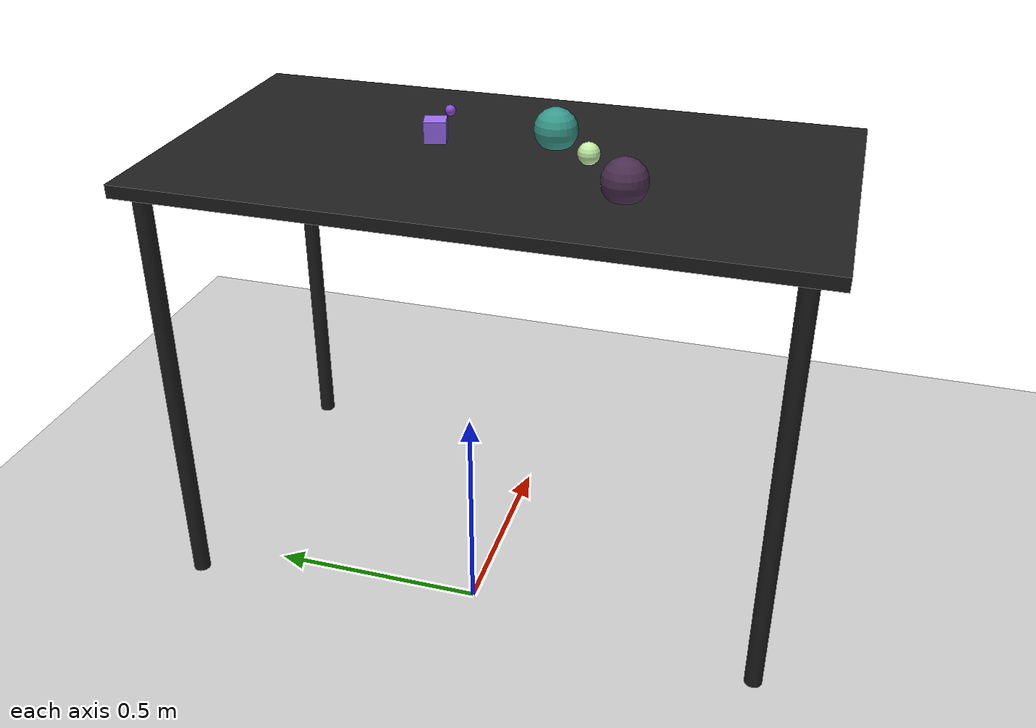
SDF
<?xml version="1.0" ?>
<sdf version="1.6">
  <world name="arm_world">
    <plugin filename="gz-sim-physics-system" name="gz::sim::systems::Physics">
      <engine>
        <filename>libgz-physics-bullet-featherstone-plugin.so</filename>
      </engine>
    </plugin>
    <plugin filename="gz-sim-user-commands-system" name="gz::sim::systems::UserCommands"/>
    <plugin filename="gz-sim-scene-broadcaster-system" name="gz::sim::systems::SceneBroadcaster"/>
    <plugin filename="gz-sim-sensors-system" name="gz::sim::systems::Sensors">
      <render_engine>ogre2</render_engine>
    </plugin>
    <gravity>0.0 0.0 -9.8</gravity>
    <scene>
      <shadows>false</shadows>
    </scene>
    <gui>
      <camera name="user_camera">
        <pose>0.75 -0.75 1.4 0 0.29 2.21</pose>
      </camera>
    </gui>
    <include>
      <uri>https://fuel.gazebosim.org/1.0/OpenRobotics/models/Sun</uri>
    </include>
    <model name="table">
      <static>true</static>
      <include>
        <uri>model://table</uri>
      </include>
      <pose>0.29 0 0 0 0 1.5708</pose>
    </model>
    <model name="ground_plane">
      <static>true</static>
      <link name="link">
        <collision name="collision">
          <geometry>
            <plane>
              <normal>0 0 1</normal>
            </plane>
          </geometry>
          <surface>
            <friction>
              <ode>
                <mu>1.0</mu>
                <mu2>1.0</mu2>
              </ode>
            </friction>
          </surface>
        </collision>
        <visual name="visual">
          <geometry>
            <plane>
              <normal>0 0 1</normal>
              <size>100 100</size>
            </plane>
          </geometry>
          <material>
            <ambient>0.8 0.8 0.8 1</ambient>
            <diffuse>0.8 0.8 0.8 1</diffuse>
            <specular>0.8 0.8 0.8 1</specular>
          </material>
        </visual>
      </link>
    </model>
    <model name="sphere_m_0">
      <pose>0.259 -0.189 1.05 0 0 5.9</pose>
      <link name="sphere_m_0_link">
        <inertial>
          <mass>0.05</mass>
          <inertia>
            <ixx>2.04e-7</ixx>
            <iyy>2.04e-7</iyy>
            <izz>3.9e-8</izz>
            <ixy>0</ixy>
            <ixz>0</ixz>
            <iyz>0</iyz>
          </inertia>
        </inertial>
        <collision name="sphere_m_0_collision">
          <geometry>
            <sphere>
              <radius>0.025</radius>
            </sphere>
          </geometry>
          <surface>
            <friction>
              <ode>
                <mu>0.8</mu>
                <mu2>0.8</mu2>
                <fdir1>0 0 1</fdir1>
                <slip1>0.001</slip1>
                <slip2>0.001</slip2>
              </ode>
              <torsional>
                <coefficient>0.1</coefficient>
                <surface_radius>0.015</surface_radius>
                <use_patch_radius>true</use_patch_radius>
              </torsional>
            </friction>
            <contact>
              <ode>
                <kp>1e5</kp>
                <kd>10</kd>
                <max_vel>0.1</max_vel>
                <min_depth>0.001</min_depth>
                <soft_cfm>0.01</soft_cfm>
                <soft_erp>0.2</soft_erp>
              </ode>
            </contact>
            <bounce>
              <restitution_coefficient>0.2</restitution_coefficient>
              <threshold>0.01</threshold>
            </bounce>
          </surface>
        </collision>
        <visual name="sphere_m_0_visual">
          <geometry>
            <sphere>
              <radius>0.025</radius>
            </sphere>
          </geometry>
          <material>
            <ambient>0.76 0.94 0.64 1</ambient>
            <diffuse>0.76 0.94 0.64 1</diffuse>
          </material>
        </visual>
        <velocity_decay>
          <linear>1</linear>
          <angular>1</angular>
        </velocity_decay>
      </link>
    </model>
    <model name="sphere_l_1">
      <pose>0.383 -0.085 1.05 0 0 2.34</pose>
      <link name="sphere_l_1_link">
        <inertial>
          <mass>0.05</mass>
          <inertia>
            <ixx>2.04e-7</ixx>
            <iyy>2.04e-7</iyy>
            <izz>3.9e-8</izz>
            <ixy>0</ixy>
            <ixz>0</ixz>
            <iyz>0</iyz>
          </inertia>
        </inertial>
        <collision name="sphere_l_1_collision">
          <geometry>
            <sphere>
              <radius>0.05</radius>
            </sphere>
          </geometry>
          <surface>
            <friction>
              <ode>
                <mu>0.8</mu>
                <mu2>0.8</mu2>
                <fdir1>0 0 1</fdir1>
                <slip1>0.001</slip1>
                <slip2>0.001</slip2>
              </ode>
              <torsional>
                <coefficient>0.1</coefficient>
                <surface_radius>0.015</surface_radius>
                <use_patch_radius>true</use_patch_radius>
              </torsional>
            </friction>
            <contact>
              <ode>
                <kp>1e5</kp>
                <kd>10</kd>
                <max_vel>0.1</max_vel>
                <min_depth>0.001</min_depth>
                <soft_cfm>0.01</soft_cfm>
                <soft_erp>0.2</soft_erp>
              </ode>
            </contact>
            <bounce>
              <restitution_coefficient>0.2</restitution_coefficient>
              <threshold>0.01</threshold>
            </bounce>
          </surface>
        </collision>
        <visual name="sphere_l_1_visual">
          <geometry>
            <sphere>
              <radius>0.05</radius>
            </sphere>
          </geometry>
          <material>
            <ambient>0.21 0.6 0.55 1</ambient>
            <diffuse>0.21 0.6 0.55 1</diffuse>
          </material>
        </visual>
        <velocity_decay>
          <linear>1</linear>
          <angular>1</angular>
        </velocity_decay>
      </link>
    </model>
    <model name="cube_m_2">
      <pose>0.306 0.171 1.05 0 0 3.41</pose>
      <link name="cube_m_2_link">
        <inertial>
          <mass>0.05</mass>
          <inertia>
            <ixx>2.04e-7</ixx>
            <iyy>2.04e-7</iyy>
            <izz>3.9e-8</izz>
            <ixy>0</ixy>
            <ixz>0</ixz>
            <iyz>0</iyz>
          </inertia>
        </inertial>
        <collision name="cube_m_2_collision">
          <geometry>
            <box>
              <size>0.05 0.05 0.05</size>
            </box>
          </geometry>
          <surface>
            <friction>
              <ode>
                <mu>0.8</mu>
                <mu2>0.8</mu2>
                <fdir1>0 0 1</fdir1>
                <slip1>0.001</slip1>
                <slip2>0.001</slip2>
              </ode>
              <torsional>
                <coefficient>0.1</coefficient>
                <surface_radius>0.015</surface_radius>
                <use_patch_radius>true</use_patch_radius>
              </torsional>
            </friction>
            <contact>
              <ode>
                <kp>1e5</kp>
                <kd>10</kd>
                <max_vel>0.1</max_vel>
                <min_depth>0.001</min_depth>
                <soft_cfm>0.01</soft_cfm>
                <soft_erp>0.2</soft_erp>
              </ode>
            </contact>
            <bounce>
              <restitution_coefficient>0.2</restitution_coefficient>
              <threshold>0.01</threshold>
            </bounce>
          </surface>
        </collision>
        <visual name="cube_m_2_visual">
          <geometry>
            <box>
              <size>0.05 0.05 0.05</size>
            </box>
          </geometry>
          <material>
            <ambient>0.6 0.42 0.95 1</ambient>
            <diffuse>0.6 0.42 0.95 1</diffuse>
          </material>
        </visual>
        <velocity_decay>
          <linear>1</linear>
          <angular>1</angular>
        </velocity_decay>
      </link>
    </model>
    <model name="sphere_l_3">
      <pose>0.129 -0.293 1.05 0 0 2.33</pose>
      <link name="sphere_l_3_link">
        <inertial>
          <mass>0.05</mass>
          <inertia>
            <ixx>2.04e-7</ixx>
            <iyy>2.04e-7</iyy>
            <izz>3.9e-8</izz>
            <ixy>0</ixy>
            <ixz>0</ixz>
            <iyz>0</iyz>
          </inertia>
        </inertial>
        <collision name="sphere_l_3_collision">
          <geometry>
            <sphere>
              <radius>0.05</radius>
            </sphere>
          </geometry>
          <surface>
            <friction>
              <ode>
                <mu>0.8</mu>
                <mu2>0.8</mu2>
                <fdir1>0 0 1</fdir1>
                <slip1>0.001</slip1>
                <slip2>0.001</slip2>
              </ode>
              <torsional>
                <coefficient>0.1</coefficient>
                <surface_radius>0.015</surface_radius>
                <use_patch_radius>true</use_patch_radius>
              </torsional>
            </friction>
            <contact>
              <ode>
                <kp>1e5</kp>
                <kd>10</kd>
                <max_vel>0.1</max_vel>
                <min_depth>0.001</min_depth>
                <soft_cfm>0.01</soft_cfm>
                <soft_erp>0.2</soft_erp>
              </ode>
            </contact>
            <bounce>
              <restitution_coefficient>0.2</restitution_coefficient>
              <threshold>0.01</threshold>
            </bounce>
          </surface>
        </collision>
        <visual name="sphere_l_3_visual">
          <geometry>
            <sphere>
              <radius>0.05</radius>
            </sphere>
          </geometry>
          <material>
            <ambient>0.29 0.18 0.31 1</ambient>
            <diffuse>0.29 0.18 0.31 1</diffuse>
          </material>
        </visual>
        <velocity_decay>
          <linear>1</linear>
          <angular>1</angular>
        </velocity_decay>
      </link>
    </model>
    <model name="sphere_s_4">
      <pose>0.441 0.182 1.05 0 0 4.06</pose>
      <link name="sphere_s_4_link">
        <inertial>
          <mass>0.05</mass>
          <inertia>
            <ixx>2.04e-7</ixx>
            <iyy>2.04e-7</iyy>
            <izz>3.9e-8</izz>
            <ixy>0</ixy>
            <ixz>0</ixz>
            <iyz>0</iyz>
          </inertia>
        </inertial>
        <collision name="sphere_s_4_collision">
          <geometry>
            <sphere>
              <radius>0.0125</radius>
            </sphere>
          </geometry>
          <surface>
            <friction>
              <ode>
                <mu>0.8</mu>
                <mu2>0.8</mu2>
                <fdir1>0 0 1</fdir1>
                <slip1>0.001</slip1>
                <slip2>0.001</slip2>
              </ode>
              <torsional>
                <coefficient>0.1</coefficient>
                <surface_radius>0.015</surface_radius>
                <use_patch_radius>true</use_patch_radius>
              </torsional>
            </friction>
            <contact>
              <ode>
                <kp>1e5</kp>
                <kd>10</kd>
                <max_vel>0.1</max_vel>
                <min_depth>0.001</min_depth>
                <soft_cfm>0.01</soft_cfm>
                <soft_erp>0.2</soft_erp>
              </ode>
            </contact>
            <bounce>
              <restitution_coefficient>0.2</restitution_coefficient>
              <threshold>0.01</threshold>
            </bounce>
          </surface>
        </collision>
        <visual name="sphere_s_4_visual">
          <geometry>
            <sphere>
              <radius>0.0125</radius>
            </sphere>
          </geometry>
          <material>
            <ambient>0.54 0.3 0.83 1</ambient>
            <diffuse>0.54 0.3 0.83 1</diffuse>
          </material>
        </visual>
        <velocity_decay>
          <linear>1</linear>
          <angular>1</angular>
        </velocity_decay>
      </link>
    </model>
  </world>
</sdf>

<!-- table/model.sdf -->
<sdf version="1.5">
  <model name="table">
    <static>true</static>
    <link name="link">
      <collision name="surface">
        <pose>0 0 1.0 0 0 0</pose>
        <geometry>
          <box>
            <size>1.5 0.8 0.03</size>
          </box>
        </geometry>
        <surface>
          <friction>
            <ode>
              <mu>0.6</mu>
              <mu2>0.6</mu2>
            </ode>
          </friction>
        </surface>
      </collision>
      <visual name="surface">
        <pose>0 0 1.0 0 0 0</pose>
        <geometry>
          <box>
            <size>1.5 0.8 0.03</size>
          </box>
        </geometry>
        <material>
          <script>
            <uri>file://media/materials/scripts/gazebo.material</uri>
            <name>Gazebo/Black</name>
          </script>
        </material>
      </visual>
      <collision name="front_left_leg">
        <pose>0.68 0.38 0.5 0 0 0</pose>
        <geometry>
          <cylinder>
            <radius>0.02</radius>
            <length>1.0</length>
          </cylinder>
        </geometry>
      </collision>
      <visual name="front_left_leg">
        <pose>0.68 0.38 0.5 0 0 0</pose>
        <geometry>
          <cylinder>
            <radius>0.02</radius>
            <length>1.0</length>
          </cylinder>
        </geometry>
        <material>
          <script>
            <uri>file://media/materials/scripts/gazebo.material</uri>
            <name>Gazebo/Black</name>
          </script>
        </material>
      </visual>
      <collision name="front_right_leg">
        <pose>0.68 -0.38 0.5 0 0 0</pose>
        <geometry>
          <cylinder>
            <radius>0.02</radius>
            <length>1.0</length>
          </cylinder>
        </geometry>
      </collision>
      <visual name="front_right_leg">
        <pose>0.68 -0.38 0.5 0 0 0</pose>
        <geometry>
          <cylinder>
            <radius>0.02</radius>
            <length>1.0</length>
          </cylinder>
        </geometry>
        <material>
          <script>
            <uri>file://media/materials/scripts/gazebo.material</uri>
            <name>Gazebo/Black</name>
          </script>
        </material>
      </visual>
      <collision name="back_right_leg">
        <pose>-0.68 -0.38 0.5 0 0 0</pose>
        <geometry>
          <cylinder>
            <radius>0.02</radius>
            <length>1.0</length>
          </cylinder>
        </geometry>
      </collision>
      <visual name="back_right_leg">
        <pose>-0.68 -0.38 0.5 0 0 0</pose>
        <geometry>
          <cylinder>
            <radius>0.02</radius>
            <length>1.0</length>
          </cylinder>
        </geometry>
        <material>
          <script>
            <uri>file://media/materials/scripts/gazebo.material</uri>
            <name>Gazebo/Black</name>
          </script>
        </material>
      </visual>
      <collision name="back_left_leg">
        <pose>-0.68 0.38 0.5 0 0 0</pose>
        <geometry>
          <cylinder>
            <radius>0.02</radius>
            <length>1.0</length>
          </cylinder>
        </geometry>
      </collision>
      <visual name="back_left_leg">
        <pose>-0.68 0.38 0.5 0 0 0</pose>
        <geometry>
          <cylinder>
            <radius>0.02</radius>
            <length>1.0</length>
          </cylinder>
        </geometry>
        <material>
          <script>
            <uri>file://media/materials/scripts/gazebo.material</uri>
            <name>Gazebo/Black</name>
          </script>
        </material>
      </visual>
    </link>
  </model>
</sdf>
